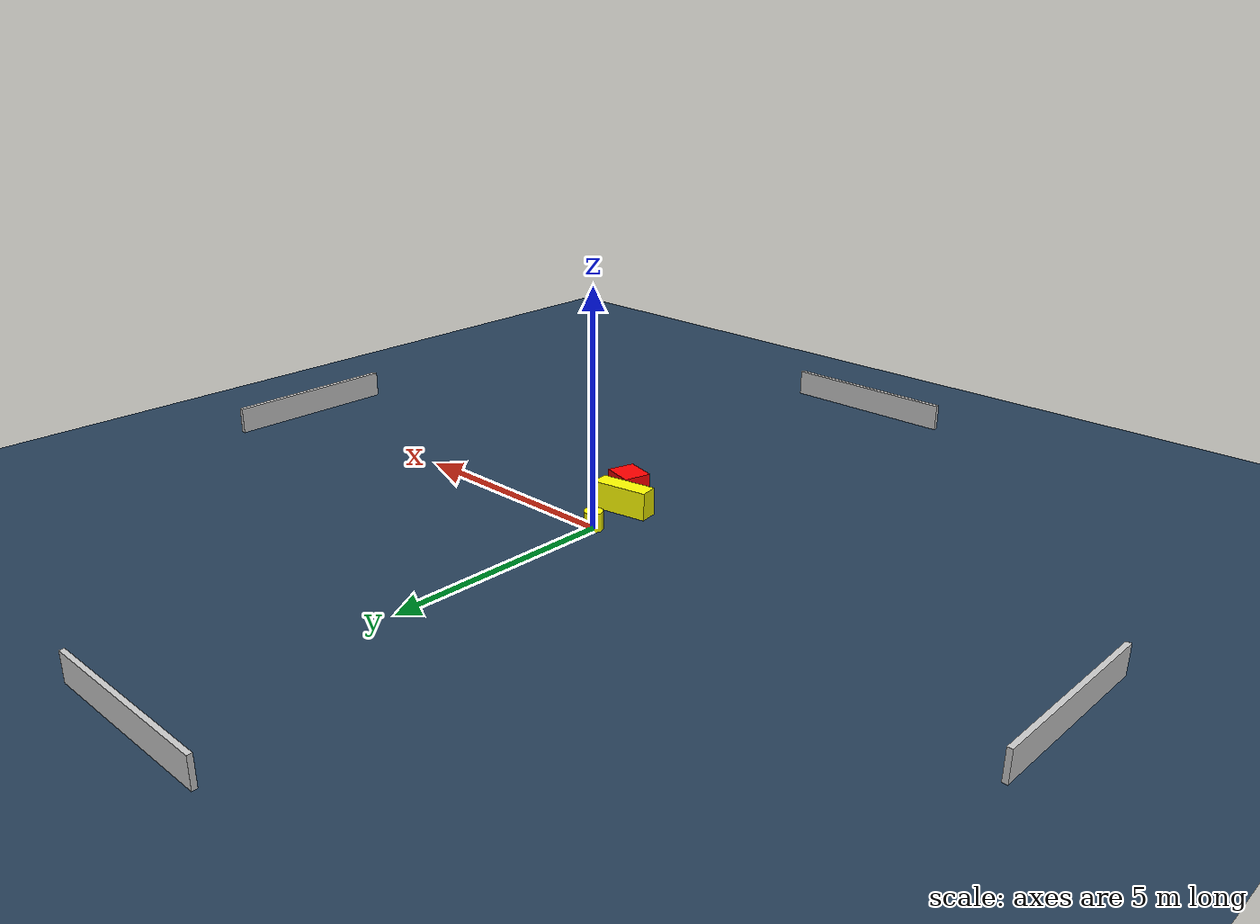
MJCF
<?xml version="1.0" ?>
<mujoco model="generated_environment">
  <option timestep="0.01" integrator="RK4" cone="elliptic"/>
  <default>
    <geom density="1"/>
  </default>
  <asset>
    <texture builtin="gradient" height="3072" name="skybox" rgb1="0.3 0.5 0.7" rgb2="0 0 0" type="skybox" width="512"/>
    <texture builtin="checker" height="300" name="groundplane" rgb1="0.2 0.3 0.4" rgb2="0.1 0.2 0.3" type="2d" width="300"/>
    <material name="groundplane" reflectance="0.2" texrepeat="5 5" texture="groundplane"/>
  </asset>
  <worldbody>
    <light dir="0 0 -1" directional="true" pos="0 0 1.5"/>
    <geom condim="3" friction="0.5 0.005 0.001" material="groundplane" name="floor" pos="0 0 0" size="0 0 0.05" type="plane"/>
    <body name="walls">
      <geom name="wall_1" condim="4" pos="-10.0 0.0 0.3" rgba="0.800000011920929 0.800000011920929 0.800000011920929 1.0" size="0.05 2.0 0.3" type="box"/>
      <geom name="wall_2" condim="4" pos="10.0 0.0 0.3" rgba="0.800000011920929 0.800000011920929 0.800000011920929 1.0" size="0.05 2.0 0.3" type="box"/>
      <geom name="wall_3" condim="4" pos="0.0 -10.0 0.3" rgba="0.800000011920929 0.800000011920929 0.800000011920929 1.0" size="2.0 0.05 0.3" type="box"/>
      <geom name="wall_4" condim="4" pos="0.0 10.0 0.3" rgba="0.800000011920929 0.800000011920929 0.800000011920929 1.0" size="2.0 0.05 0.3" type="box"/>
    </body>
    <body name="robot">
      <joint name="joint_x" type="slide" pos="0 0 0" axis="1 0 0"/>
      <joint name="joint_y" type="slide" pos="0 0 0" axis="0 1 0"/>
      <geom name="robot" type="cylinder" pos="0.0 0.0 0.2" size="0.2 0.2 0.0" mass="5.0" friction="1.0 0.005 0.0001" condim="4" rgba="1.0 1.0 0.0 1.0"/>
    </body>
    <body name="obstacle_1_movable">
      <geom name="obstacle_1_movable" condim="4" pos="0.16137918141361293 -1.0746357821786994 0.3" euler="0 0 99.88810981026603" friction="0.0 0.005 0.001" rgba="1.0 1.0 0.0 1.0" size="0.20061823642017657 0.615799756532091 0.3" type="box" mass="0.1"/>
      <joint type="free"/>
    </body>
    <body name="obstacle_2_static">
      <geom name="obstacle_2_static" condim="4" pos="0.5571973164480232 -1.6586572739039607 0.3" euler="0 0 74.67573654846386" friction="0.0 0.005 0.001" rgba="1.0 0.0 0.0 1.0" size="0.30421752738451485 0.34275136278487484 0.3" type="box"/>
    </body>
  </worldbody>
  <actuator>
    <motor name="actuator_x" joint="joint_x" gear="1" ctrlrange="-1 1"/>
    <motor name="actuator_y" joint="joint_y" gear="1" ctrlrange="-1 1"/>
  </actuator>
</mujoco>
